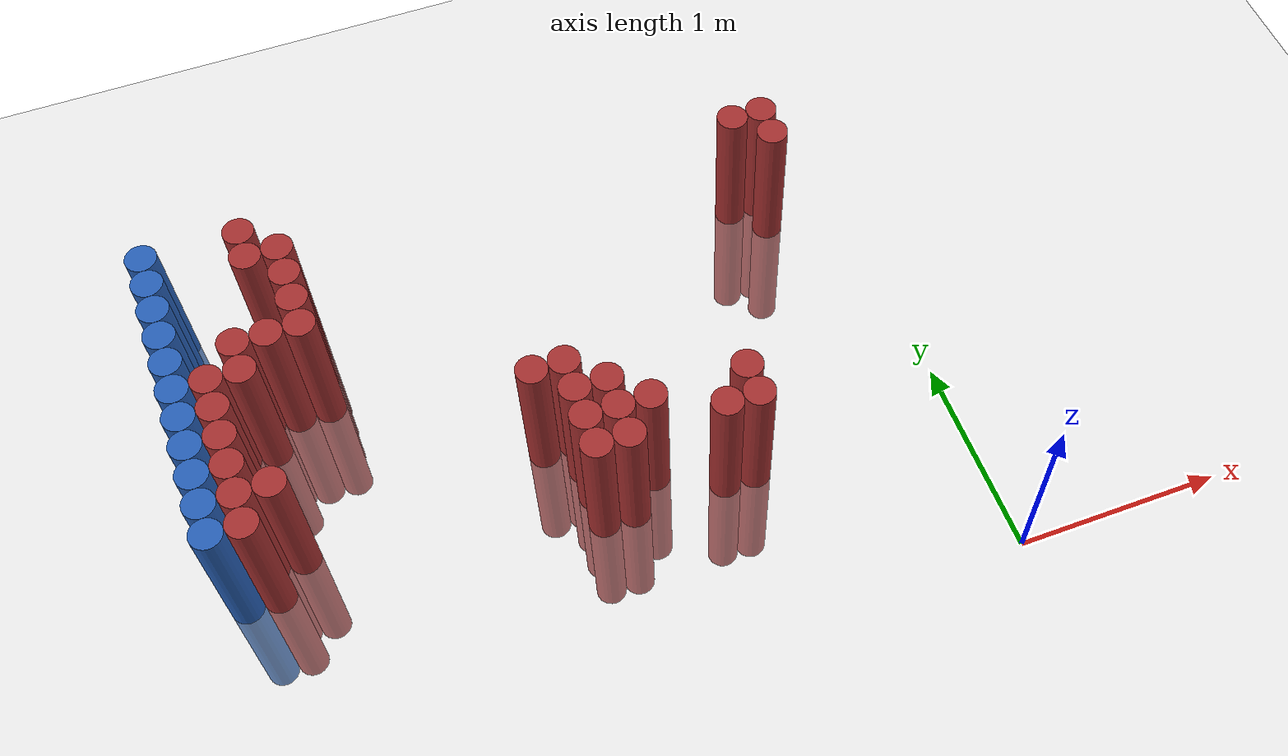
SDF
<sdf version="1.6">
 <world name="default">
  <model name="ground_plane">
   <static>1</static>
   <link name="link">
    <collision name="collision">
     <geometry><plane><normal>0 0 1</normal><size>100 100</size></plane></geometry>
     <surface><friction><ode><mu>100</mu><mu2>50</mu2></ode></friction></surface>
    </collision>
    <visual name="visual">
     <cast_shadows>0</cast_shadows>
     <geometry><plane><normal>0 0 1</normal><size>100 100</size></plane></geometry>
     <material>
      <script><uri>file://media/materials/scripts/gazebo.material</uri><name>Gazebo/Grey</name></script>
     </material>
    </visual>
   </link>
  </model>
  <model name="unit_cylinder_127">
   <static>1</static>
   <pose>-3.425000 0.925000 0.000000 0.000000 0.000000 0.000000</pose>
   <link name="link">
    <inertial>
     <mass>1</mass>
     <inertia><ixx>0.145833</ixx><ixy>0</ixy><ixz>0</ixz><iyy>0.145833</iyy><iyz>0</iyz><izz>0.125</izz></inertia>
    </inertial>
    <collision name="collision">
     <geometry><cylinder><radius>0.075000</radius><length>1.5</length></cylinder></geometry>
    </collision>
    <visual name="visual">
     <geometry><cylinder><radius>0.075000</radius><length>1.5</length></cylinder></geometry>
     <material>
      <ambient>0.152000 0.379000 0.720000 1</ambient>
      <diffuse>0.152000 0.379000 0.720000 1</diffuse>
     </material>
     <material>
      <script><name>Gazebo/Grey</name><uri>file://media/materials/scripts/gazebo.material</uri></script>
     </material>
    </visual>
   </link>
  </model>
  <model name="unit_cylinder_129">
   <static>1</static>
   <pose>-3.425000 1.075000 0.000000 0.000000 0.000000 0.000000</pose>
   <link name="link">
    <inertial>
     <mass>1</mass>
     <inertia><ixx>0.145833</ixx><ixy>0</ixy><ixz>0</ixz><iyy>0.145833</iyy><iyz>0</iyz><izz>0.125</izz></inertia>
    </inertial>
    <collision name="collision">
     <geometry><cylinder><radius>0.075000</radius><length>1.5</length></cylinder></geometry>
    </collision>
    <visual name="visual">
     <geometry><cylinder><radius>0.075000</radius><length>1.5</length></cylinder></geometry>
     <material>
      <ambient>0.152000 0.379000 0.720000 1</ambient>
      <diffuse>0.152000 0.379000 0.720000 1</diffuse>
     </material>
     <material>
      <script><name>Gazebo/Grey</name><uri>file://media/materials/scripts/gazebo.material</uri></script>
     </material>
    </visual>
   </link>
  </model>
  <model name="unit_cylinder_131">
   <static>1</static>
   <pose>-3.425000 1.225000 0.000000 0.000000 0.000000 0.000000</pose>
   <link name="link">
    <inertial>
     <mass>1</mass>
     <inertia><ixx>0.145833</ixx><ixy>0</ixy><ixz>0</ixz><iyy>0.145833</iyy><iyz>0</iyz><izz>0.125</izz></inertia>
    </inertial>
    <collision name="collision">
     <geometry><cylinder><radius>0.075000</radius><length>1.5</length></cylinder></geometry>
    </collision>
    <visual name="visual">
     <geometry><cylinder><radius>0.075000</radius><length>1.5</length></cylinder></geometry>
     <material>
      <ambient>0.152000 0.379000 0.720000 1</ambient>
      <diffuse>0.152000 0.379000 0.720000 1</diffuse>
     </material>
     <material>
      <script><name>Gazebo/Grey</name><uri>file://media/materials/scripts/gazebo.material</uri></script>
     </material>
    </visual>
   </link>
  </model>
  <model name="unit_cylinder_133">
   <static>1</static>
   <pose>-3.425000 1.375000 0.000000 0.000000 0.000000 0.000000</pose>
   <link name="link">
    <inertial>
     <mass>1</mass>
     <inertia><ixx>0.145833</ixx><ixy>0</ixy><ixz>0</ixz><iyy>0.145833</iyy><iyz>0</iyz><izz>0.125</izz></inertia>
    </inertial>
    <collision name="collision">
     <geometry><cylinder><radius>0.075000</radius><length>1.5</length></cylinder></geometry>
    </collision>
    <visual name="visual">
     <geometry><cylinder><radius>0.075000</radius><length>1.5</length></cylinder></geometry>
     <material>
      <ambient>0.152000 0.379000 0.720000 1</ambient>
      <diffuse>0.152000 0.379000 0.720000 1</diffuse>
     </material>
     <material>
      <script><name>Gazebo/Grey</name><uri>file://media/materials/scripts/gazebo.material</uri></script>
     </material>
    </visual>
   </link>
  </model>
  <model name="unit_cylinder_135">
   <static>1</static>
   <pose>-3.425000 1.525000 0.000000 0.000000 0.000000 0.000000</pose>
   <link name="link">
    <inertial>
     <mass>1</mass>
     <inertia><ixx>0.145833</ixx><ixy>0</ixy><ixz>0</ixz><iyy>0.145833</iyy><iyz>0</iyz><izz>0.125</izz></inertia>
    </inertial>
    <collision name="collision">
     <geometry><cylinder><radius>0.075000</radius><length>1.5</length></cylinder></geometry>
    </collision>
    <visual name="visual">
     <geometry><cylinder><radius>0.075000</radius><length>1.5</length></cylinder></geometry>
     <material>
      <ambient>0.152000 0.379000 0.720000 1</ambient>
      <diffuse>0.152000 0.379000 0.720000 1</diffuse>
     </material>
     <material>
      <script><name>Gazebo/Grey</name><uri>file://media/materials/scripts/gazebo.material</uri></script>
     </material>
    </visual>
   </link>
  </model>
  <model name="unit_cylinder_137">
   <static>1</static>
   <pose>-3.425000 1.675000 0.000000 0.000000 0.000000 0.000000</pose>
   <link name="link">
    <inertial>
     <mass>1</mass>
     <inertia><ixx>0.145833</ixx><ixy>0</ixy><ixz>0</ixz><iyy>0.145833</iyy><iyz>0</iyz><izz>0.125</izz></inertia>
    </inertial>
    <collision name="collision">
     <geometry><cylinder><radius>0.075000</radius><length>1.5</length></cylinder></geometry>
    </collision>
    <visual name="visual">
     <geometry><cylinder><radius>0.075000</radius><length>1.5</length></cylinder></geometry>
     <material>
      <ambient>0.152000 0.379000 0.720000 1</ambient>
      <diffuse>0.152000 0.379000 0.720000 1</diffuse>
     </material>
     <material>
      <script><name>Gazebo/Grey</name><uri>file://media/materials/scripts/gazebo.material</uri></script>
     </material>
    </visual>
   </link>
  </model>
  <model name="unit_cylinder_139">
   <static>1</static>
   <pose>-3.425000 1.825000 0.000000 0.000000 0.000000 0.000000</pose>
   <link name="link">
    <inertial>
     <mass>1</mass>
     <inertia><ixx>0.145833</ixx><ixy>0</ixy><ixz>0</ixz><iyy>0.145833</iyy><iyz>0</iyz><izz>0.125</izz></inertia>
    </inertial>
    <collision name="collision">
     <geometry><cylinder><radius>0.075000</radius><length>1.5</length></cylinder></geometry>
    </collision>
    <visual name="visual">
     <geometry><cylinder><radius>0.075000</radius><length>1.5</length></cylinder></geometry>
     <material>
      <ambient>0.152000 0.379000 0.720000 1</ambient>
      <diffuse>0.152000 0.379000 0.720000 1</diffuse>
     </material>
     <material>
      <script><name>Gazebo/Grey</name><uri>file://media/materials/scripts/gazebo.material</uri></script>
     </material>
    </visual>
   </link>
  </model>
  <model name="unit_cylinder_141">
   <static>1</static>
   <pose>-3.425000 1.975000 0.000000 0.000000 0.000000 0.000000</pose>
   <link name="link">
    <inertial>
     <mass>1</mass>
     <inertia><ixx>0.145833</ixx><ixy>0</ixy><ixz>0</ixz><iyy>0.145833</iyy><iyz>0</iyz><izz>0.125</izz></inertia>
    </inertial>
    <collision name="collision">
     <geometry><cylinder><radius>0.075000</radius><length>1.5</length></cylinder></geometry>
    </collision>
    <visual name="visual">
     <geometry><cylinder><radius>0.075000</radius><length>1.5</length></cylinder></geometry>
     <material>
      <ambient>0.152000 0.379000 0.720000 1</ambient>
      <diffuse>0.152000 0.379000 0.720000 1</diffuse>
     </material>
     <material>
      <script><name>Gazebo/Grey</name><uri>file://media/materials/scripts/gazebo.material</uri></script>
     </material>
    </visual>
   </link>
  </model>
  <model name="unit_cylinder_143">
   <static>1</static>
   <pose>-3.425000 2.125000 0.000000 0.000000 0.000000 0.000000</pose>
   <link name="link">
    <inertial>
     <mass>1</mass>
     <inertia><ixx>0.145833</ixx><ixy>0</ixy><ixz>0</ixz><iyy>0.145833</iyy><iyz>0</iyz><izz>0.125</izz></inertia>
    </inertial>
    <collision name="collision">
     <geometry><cylinder><radius>0.075000</radius><length>1.5</length></cylinder></geometry>
    </collision>
    <visual name="visual">
     <geometry><cylinder><radius>0.075000</radius><length>1.5</length></cylinder></geometry>
     <material>
      <ambient>0.152000 0.379000 0.720000 1</ambient>
      <diffuse>0.152000 0.379000 0.720000 1</diffuse>
     </material>
     <material>
      <script><name>Gazebo/Grey</name><uri>file://media/materials/scripts/gazebo.material</uri></script>
     </material>
    </visual>
   </link>
  </model>
  <model name="unit_cylinder_145">
   <static>1</static>
   <pose>-3.425000 2.275000 0.000000 0.000000 0.000000 0.000000</pose>
   <link name="link">
    <inertial>
     <mass>1</mass>
     <inertia><ixx>0.145833</ixx><ixy>0</ixy><ixz>0</ixz><iyy>0.145833</iyy><iyz>0</iyz><izz>0.125</izz></inertia>
    </inertial>
    <collision name="collision">
     <geometry><cylinder><radius>0.075000</radius><length>1.5</length></cylinder></geometry>
    </collision>
    <visual name="visual">
     <geometry><cylinder><radius>0.075000</radius><length>1.5</length></cylinder></geometry>
     <material>
      <ambient>0.152000 0.379000 0.720000 1</ambient>
      <diffuse>0.152000 0.379000 0.720000 1</diffuse>
     </material>
     <material>
      <script><name>Gazebo/Grey</name><uri>file://media/materials/scripts/gazebo.material</uri></script>
     </material>
    </visual>
   </link>
  </model>
  <model name="unit_cylinder_147">
   <static>1</static>
   <pose>-3.425000 2.425000 0.000000 0.000000 0.000000 0.000000</pose>
   <link name="link">
    <inertial>
     <mass>1</mass>
     <inertia><ixx>0.145833</ixx><ixy>0</ixy><ixz>0</ixz><iyy>0.145833</iyy><iyz>0</iyz><izz>0.125</izz></inertia>
    </inertial>
    <collision name="collision">
     <geometry><cylinder><radius>0.075000</radius><length>1.5</length></cylinder></geometry>
    </collision>
    <visual name="visual">
     <geometry><cylinder><radius>0.075000</radius><length>1.5</length></cylinder></geometry>
     <material>
      <ambient>0.152000 0.379000 0.720000 1</ambient>
      <diffuse>0.152000 0.379000 0.720000 1</diffuse>
     </material>
     <material>
      <script><name>Gazebo/Grey</name><uri>file://media/materials/scripts/gazebo.material</uri></script>
     </material>
    </visual>
   </link>
  </model>
  <model name="unit_cylinder_227">
   <static>1</static>
   <pose>-3.425000 0.925000 0.000000 0.000000 0.000000 0.000000</pose>
   <link name="link">
    <inertial>
     <mass>1</mass>
     <inertia><ixx>0.145833</ixx><ixy>0</ixy><ixz>0</ixz><iyy>0.145833</iyy><iyz>0</iyz><izz>0.125</izz></inertia>
    </inertial>
    <collision name="collision">
     <geometry><cylinder><radius>0.075000</radius><length>1.5</length></cylinder></geometry>
    </collision>
    <visual name="visual">
     <geometry><cylinder><radius>0.075000</radius><length>1.5</length></cylinder></geometry>
     <material>
      <ambient>0.152000 0.379000 0.720000 1</ambient>
      <diffuse>0.152000 0.379000 0.720000 1</diffuse>
     </material>
     <material>
      <script><name>Gazebo/Grey</name><uri>file://media/materials/scripts/gazebo.material</uri></script>
     </material>
    </visual>
   </link>
  </model>
  <model name="unit_cylinder_228">
   <static>1</static>
   <pose>-3.425000 1.075000 0.000000 0.000000 0.000000 0.000000</pose>
   <link name="link">
    <inertial>
     <mass>1</mass>
     <inertia><ixx>0.145833</ixx><ixy>0</ixy><ixz>0</ixz><iyy>0.145833</iyy><iyz>0</iyz><izz>0.125</izz></inertia>
    </inertial>
    <collision name="collision">
     <geometry><cylinder><radius>0.075000</radius><length>1.5</length></cylinder></geometry>
    </collision>
    <visual name="visual">
     <geometry><cylinder><radius>0.075000</radius><length>1.5</length></cylinder></geometry>
     <material>
      <ambient>0.152000 0.379000 0.720000 1</ambient>
      <diffuse>0.152000 0.379000 0.720000 1</diffuse>
     </material>
     <material>
      <script><name>Gazebo/Grey</name><uri>file://media/materials/scripts/gazebo.material</uri></script>
     </material>
    </visual>
   </link>
  </model>
  <model name="unit_cylinder_229">
   <static>1</static>
   <pose>-3.425000 1.225000 0.000000 0.000000 0.000000 0.000000</pose>
   <link name="link">
    <inertial>
     <mass>1</mass>
     <inertia><ixx>0.145833</ixx><ixy>0</ixy><ixz>0</ixz><iyy>0.145833</iyy><iyz>0</iyz><izz>0.125</izz></inertia>
    </inertial>
    <collision name="collision">
     <geometry><cylinder><radius>0.075000</radius><length>1.5</length></cylinder></geometry>
    </collision>
    <visual name="visual">
     <geometry><cylinder><radius>0.075000</radius><length>1.5</length></cylinder></geometry>
     <material>
      <ambient>0.152000 0.379000 0.720000 1</ambient>
      <diffuse>0.152000 0.379000 0.720000 1</diffuse>
     </material>
     <material>
      <script><name>Gazebo/Grey</name><uri>file://media/materials/scripts/gazebo.material</uri></script>
     </material>
    </visual>
   </link>
  </model>
  <model name="unit_cylinder_230">
   <static>1</static>
   <pose>-3.425000 1.375000 0.000000 0.000000 0.000000 0.000000</pose>
   <link name="link">
    <inertial>
     <mass>1</mass>
     <inertia><ixx>0.145833</ixx><ixy>0</ixy><ixz>0</ixz><iyy>0.145833</iyy><iyz>0</iyz><izz>0.125</izz></inertia>
    </inertial>
    <collision name="collision">
     <geometry><cylinder><radius>0.075000</radius><length>1.5</length></cylinder></geometry>
    </collision>
    <visual name="visual">
     <geometry><cylinder><radius>0.075000</radius><length>1.5</length></cylinder></geometry>
     <material>
      <ambient>0.152000 0.379000 0.720000 1</ambient>
      <diffuse>0.152000 0.379000 0.720000 1</diffuse>
     </material>
     <material>
      <script><name>Gazebo/Grey</name><uri>file://media/materials/scripts/gazebo.material</uri></script>
     </material>
    </visual>
   </link>
  </model>
  <model name="unit_cylinder_231">
   <static>1</static>
   <pose>-3.425000 1.525000 0.000000 0.000000 0.000000 0.000000</pose>
   <link name="link">
    <inertial>
     <mass>1</mass>
     <inertia><ixx>0.145833</ixx><ixy>0</ixy><ixz>0</ixz><iyy>0.145833</iyy><iyz>0</iyz><izz>0.125</izz></inertia>
    </inertial>
    <collision name="collision">
     <geometry><cylinder><radius>0.075000</radius><length>1.5</length></cylinder></geometry>
    </collision>
    <visual name="visual">
     <geometry><cylinder><radius>0.075000</radius><length>1.5</length></cylinder></geometry>
     <material>
      <ambient>0.152000 0.379000 0.720000 1</ambient>
      <diffuse>0.152000 0.379000 0.720000 1</diffuse>
     </material>
     <material>
      <script><name>Gazebo/Grey</name><uri>file://media/materials/scripts/gazebo.material</uri></script>
     </material>
    </visual>
   </link>
  </model>
  <model name="unit_cylinder_232">
   <static>1</static>
   <pose>-3.425000 1.675000 0.000000 0.000000 0.000000 0.000000</pose>
   <link name="link">
    <inertial>
     <mass>1</mass>
     <inertia><ixx>0.145833</ixx><ixy>0</ixy><ixz>0</ixz><iyy>0.145833</iyy><iyz>0</iyz><izz>0.125</izz></inertia>
    </inertial>
    <collision name="collision">
     <geometry><cylinder><radius>0.075000</radius><length>1.5</length></cylinder></geometry>
    </collision>
    <visual name="visual">
     <geometry><cylinder><radius>0.075000</radius><length>1.5</length></cylinder></geometry>
     <material>
      <ambient>0.152000 0.379000 0.720000 1</ambient>
      <diffuse>0.152000 0.379000 0.720000 1</diffuse>
     </material>
     <material>
      <script><name>Gazebo/Grey</name><uri>file://media/materials/scripts/gazebo.material</uri></script>
     </material>
    </visual>
   </link>
  </model>
  <model name="unit_cylinder_233">
   <static>1</static>
   <pose>-3.425000 1.825000 0.000000 0.000000 0.000000 0.000000</pose>
   <link name="link">
    <inertial>
     <mass>1</mass>
     <inertia><ixx>0.145833</ixx><ixy>0</ixy><ixz>0</ixz><iyy>0.145833</iyy><iyz>0</iyz><izz>0.125</izz></inertia>
    </inertial>
    <collision name="collision">
     <geometry><cylinder><radius>0.075000</radius><length>1.5</length></cylinder></geometry>
    </collision>
    <visual name="visual">
     <geometry><cylinder><radius>0.075000</radius><length>1.5</length></cylinder></geometry>
     <material>
      <ambient>0.152000 0.379000 0.720000 1</ambient>
      <diffuse>0.152000 0.379000 0.720000 1</diffuse>
     </material>
     <material>
      <script><name>Gazebo/Grey</name><uri>file://media/materials/scripts/gazebo.material</uri></script>
     </material>
    </visual>
   </link>
  </model>
  <model name="unit_cylinder_234">
   <static>1</static>
   <pose>-3.425000 1.975000 0.000000 0.000000 0.000000 0.000000</pose>
   <link name="link">
    <inertial>
     <mass>1</mass>
     <inertia><ixx>0.145833</ixx><ixy>0</ixy><ixz>0</ixz><iyy>0.145833</iyy><iyz>0</iyz><izz>0.125</izz></inertia>
    </inertial>
    <collision name="collision">
     <geometry><cylinder><radius>0.075000</radius><length>1.5</length></cylinder></geometry>
    </collision>
    <visual name="visual">
     <geometry><cylinder><radius>0.075000</radius><length>1.5</length></cylinder></geometry>
     <material>
      <ambient>0.152000 0.379000 0.720000 1</ambient>
      <diffuse>0.152000 0.379000 0.720000 1</diffuse>
     </material>
     <material>
      <script><name>Gazebo/Grey</name><uri>file://media/materials/scripts/gazebo.material</uri></script>
     </material>
    </visual>
   </link>
  </model>
  <model name="unit_cylinder_235">
   <static>1</static>
   <pose>-3.425000 2.125000 0.000000 0.000000 0.000000 0.000000</pose>
   <link name="link">
    <inertial>
     <mass>1</mass>
     <inertia><ixx>0.145833</ixx><ixy>0</ixy><ixz>0</ixz><iyy>0.145833</iyy><iyz>0</iyz><izz>0.125</izz></inertia>
    </inertial>
    <collision name="collision">
     <geometry><cylinder><radius>0.075000</radius><length>1.5</length></cylinder></geometry>
    </collision>
    <visual name="visual">
     <geometry><cylinder><radius>0.075000</radius><length>1.5</length></cylinder></geometry>
     <material>
      <ambient>0.152000 0.379000 0.720000 1</ambient>
      <diffuse>0.152000 0.379000 0.720000 1</diffuse>
     </material>
     <material>
      <script><name>Gazebo/Grey</name><uri>file://media/materials/scripts/gazebo.material</uri></script>
     </material>
    </visual>
   </link>
  </model>
  <model name="unit_cylinder_236">
   <static>1</static>
   <pose>-3.425000 2.275000 0.000000 0.000000 0.000000 0.000000</pose>
   <link name="link">
    <inertial>
     <mass>1</mass>
     <inertia><ixx>0.145833</ixx><ixy>0</ixy><ixz>0</ixz><iyy>0.145833</iyy><iyz>0</iyz><izz>0.125</izz></inertia>
    </inertial>
    <collision name="collision">
     <geometry><cylinder><radius>0.075000</radius><length>1.5</length></cylinder></geometry>
    </collision>
    <visual name="visual">
     <geometry><cylinder><radius>0.075000</radius><length>1.5</length></cylinder></geometry>
     <material>
      <ambient>0.152000 0.379000 0.720000 1</ambient>
      <diffuse>0.152000 0.379000 0.720000 1</diffuse>
     </material>
     <material>
      <script><name>Gazebo/Grey</name><uri>file://media/materials/scripts/gazebo.material</uri></script>
     </material>
    </visual>
   </link>
  </model>
  <model name="unit_cylinder_237">
   <static>1</static>
   <pose>-3.425000 2.425000 0.000000 0.000000 0.000000 0.000000</pose>
   <link name="link">
    <inertial>
     <mass>1</mass>
     <inertia><ixx>0.145833</ixx><ixy>0</ixy><ixz>0</ixz><iyy>0.145833</iyy><iyz>0</iyz><izz>0.125</izz></inertia>
    </inertial>
    <collision name="collision">
     <geometry><cylinder><radius>0.075000</radius><length>1.5</length></cylinder></geometry>
    </collision>
    <visual name="visual">
     <geometry><cylinder><radius>0.075000</radius><length>1.5</length></cylinder></geometry>
     <material>
      <ambient>0.152000 0.379000 0.720000 1</ambient>
      <diffuse>0.152000 0.379000 0.720000 1</diffuse>
     </material>
     <material>
      <script><name>Gazebo/Grey</name><uri>file://media/materials/scripts/gazebo.material</uri></script>
     </material>
    </visual>
   </link>
  </model>
  <model name="unit_cylinder_269">
   <static>1</static>
   <pose>-3.275000 0.925000 0.000000 0.000000 0.000000 0.000000</pose>
   <link name="link">
    <inertial>
     <mass>1</mass>
     <inertia><ixx>0.145833</ixx><ixy>0</ixy><ixz>0</ixz><iyy>0.145833</iyy><iyz>0</iyz><izz>0.125</izz></inertia>
    </inertial>
    <collision name="collision">
     <geometry><cylinder><radius>0.075000</radius><length>1.5</length></cylinder></geometry>
    </collision>
    <visual name="visual">
     <geometry><cylinder><radius>0.075000</radius><length>1.5</length></cylinder></geometry>
     <material>
      <ambient>0.648000 0.192000 0.192000 1</ambient>
      <diffuse>0.648000 0.192000 0.192000 1</diffuse>
     </material>
     <material>
      <script><name>Gazebo/Grey</name><uri>file://media/materials/scripts/gazebo.material</uri></script>
     </material>
    </visual>
   </link>
  </model>
  <model name="unit_cylinder_270">
   <static>1</static>
   <pose>-3.275000 1.075000 0.000000 0.000000 0.000000 0.000000</pose>
   <link name="link">
    <inertial>
     <mass>1</mass>
     <inertia><ixx>0.145833</ixx><ixy>0</ixy><ixz>0</ixz><iyy>0.145833</iyy><iyz>0</iyz><izz>0.125</izz></inertia>
    </inertial>
    <collision name="collision">
     <geometry><cylinder><radius>0.075000</radius><length>1.5</length></cylinder></geometry>
    </collision>
    <visual name="visual">
     <geometry><cylinder><radius>0.075000</radius><length>1.5</length></cylinder></geometry>
     <material>
      <ambient>0.648000 0.192000 0.192000 1</ambient>
      <diffuse>0.648000 0.192000 0.192000 1</diffuse>
     </material>
     <material>
      <script><name>Gazebo/Grey</name><uri>file://media/materials/scripts/gazebo.material</uri></script>
     </material>
    </visual>
   </link>
  </model>
  <model name="unit_cylinder_271">
   <static>1</static>
   <pose>-3.275000 1.225000 0.000000 0.000000 0.000000 0.000000</pose>
   <link name="link">
    <inertial>
     <mass>1</mass>
     <inertia><ixx>0.145833</ixx><ixy>0</ixy><ixz>0</ixz><iyy>0.145833</iyy><iyz>0</iyz><izz>0.125</izz></inertia>
    </inertial>
    <collision name="collision">
     <geometry><cylinder><radius>0.075000</radius><length>1.5</length></cylinder></geometry>
    </collision>
    <visual name="visual">
     <geometry><cylinder><radius>0.075000</radius><length>1.5</length></cylinder></geometry>
     <material>
      <ambient>0.648000 0.192000 0.192000 1</ambient>
      <diffuse>0.648000 0.192000 0.192000 1</diffuse>
     </material>
     <material>
      <script><name>Gazebo/Grey</name><uri>file://media/materials/scripts/gazebo.material</uri></script>
     </material>
    </visual>
   </link>
  </model>
  <model name="unit_cylinder_272">
   <static>1</static>
   <pose>-3.275000 1.375000 0.000000 0.000000 0.000000 0.000000</pose>
   <link name="link">
    <inertial>
     <mass>1</mass>
     <inertia><ixx>0.145833</ixx><ixy>0</ixy><ixz>0</ixz><iyy>0.145833</iyy><iyz>0</iyz><izz>0.125</izz></inertia>
    </inertial>
    <collision name="collision">
     <geometry><cylinder><radius>0.075000</radius><length>1.5</length></cylinder></geometry>
    </collision>
    <visual name="visual">
     <geometry><cylinder><radius>0.075000</radius><length>1.5</length></cylinder></geometry>
     <material>
      <ambient>0.648000 0.192000 0.192000 1</ambient>
      <diffuse>0.648000 0.192000 0.192000 1</diffuse>
     </material>
     <material>
      <script><name>Gazebo/Grey</name><uri>file://media/materials/scripts/gazebo.material</uri></script>
     </material>
    </visual>
   </link>
  </model>
  <model name="unit_cylinder_273">
   <static>1</static>
   <pose>-3.275000 1.525000 0.000000 0.000000 0.000000 0.000000</pose>
   <link name="link">
    <inertial>
     <mass>1</mass>
     <inertia><ixx>0.145833</ixx><ixy>0</ixy><ixz>0</ixz><iyy>0.145833</iyy><iyz>0</iyz><izz>0.125</izz></inertia>
    </inertial>
    <collision name="collision">
     <geometry><cylinder><radius>0.075000</radius><length>1.5</length></cylinder></geometry>
    </collision>
    <visual name="visual">
     <geometry><cylinder><radius>0.075000</radius><length>1.5</length></cylinder></geometry>
     <material>
      <ambient>0.648000 0.192000 0.192000 1</ambient>
      <diffuse>0.648000 0.192000 0.192000 1</diffuse>
     </material>
     <material>
      <script><name>Gazebo/Grey</name><uri>file://media/materials/scripts/gazebo.material</uri></script>
     </material>
    </visual>
   </link>
  </model>
  <model name="unit_cylinder_274">
   <static>1</static>
   <pose>-3.275000 1.675000 0.000000 0.000000 0.000000 0.000000</pose>
   <link name="link">
    <inertial>
     <mass>1</mass>
     <inertia><ixx>0.145833</ixx><ixy>0</ixy><ixz>0</ixz><iyy>0.145833</iyy><iyz>0</iyz><izz>0.125</izz></inertia>
    </inertial>
    <collision name="collision">
     <geometry><cylinder><radius>0.075000</radius><length>1.5</length></cylinder></geometry>
    </collision>
    <visual name="visual">
     <geometry><cylinder><radius>0.075000</radius><length>1.5</length></cylinder></geometry>
     <material>
      <ambient>0.648000 0.192000 0.192000 1</ambient>
      <diffuse>0.648000 0.192000 0.192000 1</diffuse>
     </material>
     <material>
      <script><name>Gazebo/Grey</name><uri>file://media/materials/scripts/gazebo.material</uri></script>
     </material>
    </visual>
   </link>
  </model>
  <model name="unit_cylinder_288">
   <static>1</static>
   <pose>-3.125000 1.075000 0.000000 0.000000 0.000000 0.000000</pose>
   <link name="link">
    <inertial>
     <mass>1</mass>
     <inertia><ixx>0.145833</ixx><ixy>0</ixy><ixz>0</ixz><iyy>0.145833</iyy><iyz>0</iyz><izz>0.125</izz></inertia>
    </inertial>
    <collision name="collision">
     <geometry><cylinder><radius>0.075000</radius><length>1.5</length></cylinder></geometry>
    </collision>
    <visual name="visual">
     <geometry><cylinder><radius>0.075000</radius><length>1.5</length></cylinder></geometry>
     <material>
      <ambient>0.648000 0.192000 0.192000 1</ambient>
      <diffuse>0.648000 0.192000 0.192000 1</diffuse>
     </material>
     <material>
      <script><name>Gazebo/Grey</name><uri>file://media/materials/scripts/gazebo.material</uri></script>
     </material>
    </visual>
   </link>
  </model>
  <model name="unit_cylinder_289">
   <static>1</static>
   <pose>-3.125000 1.675000 0.000000 0.000000 0.000000 0.000000</pose>
   <link name="link">
    <inertial>
     <mass>1</mass>
     <inertia><ixx>0.145833</ixx><ixy>0</ixy><ixz>0</ixz><iyy>0.145833</iyy><iyz>0</iyz><izz>0.125</izz></inertia>
    </inertial>
    <collision name="collision">
     <geometry><cylinder><radius>0.075000</radius><length>1.5</length></cylinder></geometry>
    </collision>
    <visual name="visual">
     <geometry><cylinder><radius>0.075000</radius><length>1.5</length></cylinder></geometry>
     <material>
      <ambient>0.648000 0.192000 0.192000 1</ambient>
      <diffuse>0.648000 0.192000 0.192000 1</diffuse>
     </material>
     <material>
      <script><name>Gazebo/Grey</name><uri>file://media/materials/scripts/gazebo.material</uri></script>
     </material>
    </visual>
   </link>
  </model>
  <model name="unit_cylinder_290">
   <static>1</static>
   <pose>-3.125000 1.825000 0.000000 0.000000 0.000000 0.000000</pose>
   <link name="link">
    <inertial>
     <mass>1</mass>
     <inertia><ixx>0.145833</ixx><ixy>0</ixy><ixz>0</ixz><iyy>0.145833</iyy><iyz>0</iyz><izz>0.125</izz></inertia>
    </inertial>
    <collision name="collision">
     <geometry><cylinder><radius>0.075000</radius><length>1.5</length></cylinder></geometry>
    </collision>
    <visual name="visual">
     <geometry><cylinder><radius>0.075000</radius><length>1.5</length></cylinder></geometry>
     <material>
      <ambient>0.648000 0.192000 0.192000 1</ambient>
      <diffuse>0.648000 0.192000 0.192000 1</diffuse>
     </material>
     <material>
      <script><name>Gazebo/Grey</name><uri>file://media/materials/scripts/gazebo.material</uri></script>
     </material>
    </visual>
   </link>
  </model>
  <model name="unit_cylinder_296">
   <static>1</static>
   <pose>-2.975000 1.825000 0.000000 0.000000 0.000000 0.000000</pose>
   <link name="link">
    <inertial>
     <mass>1</mass>
     <inertia><ixx>0.145833</ixx><ixy>0</ixy><ixz>0</ixz><iyy>0.145833</iyy><iyz>0</iyz><izz>0.125</izz></inertia>
    </inertial>
    <collision name="collision">
     <geometry><cylinder><radius>0.075000</radius><length>1.5</length></cylinder></geometry>
    </collision>
    <visual name="visual">
     <geometry><cylinder><radius>0.075000</radius><length>1.5</length></cylinder></geometry>
     <material>
      <ambient>0.648000 0.192000 0.192000 1</ambient>
      <diffuse>0.648000 0.192000 0.192000 1</diffuse>
     </material>
     <material>
      <script><name>Gazebo/Grey</name><uri>file://media/materials/scripts/gazebo.material</uri></script>
     </material>
    </visual>
   </link>
  </model>
  <model name="unit_cylinder_297">
   <static>1</static>
   <pose>-2.975000 2.275000 0.000000 0.000000 0.000000 0.000000</pose>
   <link name="link">
    <inertial>
     <mass>1</mass>
     <inertia><ixx>0.145833</ixx><ixy>0</ixy><ixz>0</ixz><iyy>0.145833</iyy><iyz>0</iyz><izz>0.125</izz></inertia>
    </inertial>
    <collision name="collision">
     <geometry><cylinder><radius>0.075000</radius><length>1.5</length></cylinder></geometry>
    </collision>
    <visual name="visual">
     <geometry><cylinder><radius>0.075000</radius><length>1.5</length></cylinder></geometry>
     <material>
      <ambient>0.648000 0.192000 0.192000 1</ambient>
      <diffuse>0.648000 0.192000 0.192000 1</diffuse>
     </material>
     <material>
      <script><name>Gazebo/Grey</name><uri>file://media/materials/scripts/gazebo.material</uri></script>
     </material>
    </visual>
   </link>
  </model>
  <model name="unit_cylinder_298">
   <static>1</static>
   <pose>-2.975000 2.425000 0.000000 0.000000 0.000000 0.000000</pose>
   <link name="link">
    <inertial>
     <mass>1</mass>
     <inertia><ixx>0.145833</ixx><ixy>0</ixy><ixz>0</ixz><iyy>0.145833</iyy><iyz>0</iyz><izz>0.125</izz></inertia>
    </inertial>
    <collision name="collision">
     <geometry><cylinder><radius>0.075000</radius><length>1.5</length></cylinder></geometry>
    </collision>
    <visual name="visual">
     <geometry><cylinder><radius>0.075000</radius><length>1.5</length></cylinder></geometry>
     <material>
      <ambient>0.648000 0.192000 0.192000 1</ambient>
      <diffuse>0.648000 0.192000 0.192000 1</diffuse>
     </material>
     <material>
      <script><name>Gazebo/Grey</name><uri>file://media/materials/scripts/gazebo.material</uri></script>
     </material>
    </visual>
   </link>
  </model>
  <model name="unit_cylinder_306">
   <static>1</static>
   <pose>-2.825000 1.825000 0.000000 0.000000 0.000000 0.000000</pose>
   <link name="link">
    <inertial>
     <mass>1</mass>
     <inertia><ixx>0.145833</ixx><ixy>0</ixy><ixz>0</ixz><iyy>0.145833</iyy><iyz>0</iyz><izz>0.125</izz></inertia>
    </inertial>
    <collision name="collision">
     <geometry><cylinder><radius>0.075000</radius><length>1.5</length></cylinder></geometry>
    </collision>
    <visual name="visual">
     <geometry><cylinder><radius>0.075000</radius><length>1.5</length></cylinder></geometry>
     <material>
      <ambient>0.648000 0.192000 0.192000 1</ambient>
      <diffuse>0.648000 0.192000 0.192000 1</diffuse>
     </material>
     <material>
      <script><name>Gazebo/Grey</name><uri>file://media/materials/scripts/gazebo.material</uri></script>
     </material>
    </visual>
   </link>
  </model>
  <model name="unit_cylinder_307">
   <static>1</static>
   <pose>-2.825000 1.975000 0.000000 0.000000 0.000000 0.000000</pose>
   <link name="link">
    <inertial>
     <mass>1</mass>
     <inertia><ixx>0.145833</ixx><ixy>0</ixy><ixz>0</ixz><iyy>0.145833</iyy><iyz>0</iyz><izz>0.125</izz></inertia>
    </inertial>
    <collision name="collision">
     <geometry><cylinder><radius>0.075000</radius><length>1.5</length></cylinder></geometry>
    </collision>
    <visual name="visual">
     <geometry><cylinder><radius>0.075000</radius><length>1.5</length></cylinder></geometry>
     <material>
      <ambient>0.648000 0.192000 0.192000 1</ambient>
      <diffuse>0.648000 0.192000 0.192000 1</diffuse>
     </material>
     <material>
      <script><name>Gazebo/Grey</name><uri>file://media/materials/scripts/gazebo.material</uri></script>
     </material>
    </visual>
   </link>
  </model>
  <model name="unit_cylinder_308">
   <static>1</static>
   <pose>-2.825000 2.125000 0.000000 0.000000 0.000000 0.000000</pose>
   <link name="link">
    <inertial>
     <mass>1</mass>
     <inertia><ixx>0.145833</ixx><ixy>0</ixy><ixz>0</ixz><iyy>0.145833</iyy><iyz>0</iyz><izz>0.125</izz></inertia>
    </inertial>
    <collision name="collision">
     <geometry><cylinder><radius>0.075000</radius><length>1.5</length></cylinder></geometry>
    </collision>
    <visual name="visual">
     <geometry><cylinder><radius>0.075000</radius><length>1.5</length></cylinder></geometry>
     <material>
      <ambient>0.648000 0.192000 0.192000 1</ambient>
      <diffuse>0.648000 0.192000 0.192000 1</diffuse>
     </material>
     <material>
      <script><name>Gazebo/Grey</name><uri>file://media/materials/scripts/gazebo.material</uri></script>
     </material>
    </visual>
   </link>
  </model>
  <model name="unit_cylinder_309">
   <static>1</static>
   <pose>-2.825000 2.275000 0.000000 0.000000 0.000000 0.000000</pose>
   <link name="link">
    <inertial>
     <mass>1</mass>
     <inertia><ixx>0.145833</ixx><ixy>0</ixy><ixz>0</ixz><iyy>0.145833</iyy><iyz>0</iyz><izz>0.125</izz></inertia>
    </inertial>
    <collision name="collision">
     <geometry><cylinder><radius>0.075000</radius><length>1.5</length></cylinder></geometry>
    </collision>
    <visual name="visual">
     <geometry><cylinder><radius>0.075000</radius><length>1.5</length></cylinder></geometry>
     <material>
      <ambient>0.648000 0.192000 0.192000 1</ambient>
      <diffuse>0.648000 0.192000 0.192000 1</diffuse>
     </material>
     <material>
      <script><name>Gazebo/Grey</name><uri>file://media/materials/scripts/gazebo.material</uri></script>
     </material>
    </visual>
   </link>
  </model>
  <model name="unit_cylinder_357">
   <static>1</static>
   <pose>-1.925000 1.225000 0.000000 0.000000 0.000000 0.000000</pose>
   <link name="link">
    <inertial>
     <mass>1</mass>
     <inertia><ixx>0.145833</ixx><ixy>0</ixy><ixz>0</ixz><iyy>0.145833</iyy><iyz>0</iyz><izz>0.125</izz></inertia>
    </inertial>
    <collision name="collision">
     <geometry><cylinder><radius>0.075000</radius><length>1.5</length></cylinder></geometry>
    </collision>
    <visual name="visual">
     <geometry><cylinder><radius>0.075000</radius><length>1.5</length></cylinder></geometry>
     <material>
      <ambient>0.648000 0.192000 0.192000 1</ambient>
      <diffuse>0.648000 0.192000 0.192000 1</diffuse>
     </material>
     <material>
      <script><name>Gazebo/Grey</name><uri>file://media/materials/scripts/gazebo.material</uri></script>
     </material>
    </visual>
   </link>
  </model>
  <model name="unit_cylinder_364">
   <static>1</static>
   <pose>-1.775000 0.775000 0.000000 0.000000 0.000000 0.000000</pose>
   <link name="link">
    <inertial>
     <mass>1</mass>
     <inertia><ixx>0.145833</ixx><ixy>0</ixy><ixz>0</ixz><iyy>0.145833</iyy><iyz>0</iyz><izz>0.125</izz></inertia>
    </inertial>
    <collision name="collision">
     <geometry><cylinder><radius>0.075000</radius><length>1.5</length></cylinder></geometry>
    </collision>
    <visual name="visual">
     <geometry><cylinder><radius>0.075000</radius><length>1.5</length></cylinder></geometry>
     <material>
      <ambient>0.648000 0.192000 0.192000 1</ambient>
      <diffuse>0.648000 0.192000 0.192000 1</diffuse>
     </material>
     <material>
      <script><name>Gazebo/Grey</name><uri>file://media/materials/scripts/gazebo.material</uri></script>
     </material>
    </visual>
   </link>
  </model>
  <model name="unit_cylinder_365">
   <static>1</static>
   <pose>-1.775000 0.925000 0.000000 0.000000 0.000000 0.000000</pose>
   <link name="link">
    <inertial>
     <mass>1</mass>
     <inertia><ixx>0.145833</ixx><ixy>0</ixy><ixz>0</ixz><iyy>0.145833</iyy><iyz>0</iyz><izz>0.125</izz></inertia>
    </inertial>
    <collision name="collision">
     <geometry><cylinder><radius>0.075000</radius><length>1.5</length></cylinder></geometry>
    </collision>
    <visual name="visual">
     <geometry><cylinder><radius>0.075000</radius><length>1.5</length></cylinder></geometry>
     <material>
      <ambient>0.648000 0.192000 0.192000 1</ambient>
      <diffuse>0.648000 0.192000 0.192000 1</diffuse>
     </material>
     <material>
      <script><name>Gazebo/Grey</name><uri>file://media/materials/scripts/gazebo.material</uri></script>
     </material>
    </visual>
   </link>
  </model>
  <model name="unit_cylinder_366">
   <static>1</static>
   <pose>-1.775000 1.075000 0.000000 0.000000 0.000000 0.000000</pose>
   <link name="link">
    <inertial>
     <mass>1</mass>
     <inertia><ixx>0.145833</ixx><ixy>0</ixy><ixz>0</ixz><iyy>0.145833</iyy><iyz>0</iyz><izz>0.125</izz></inertia>
    </inertial>
    <collision name="collision">
     <geometry><cylinder><radius>0.075000</radius><length>1.5</length></cylinder></geometry>
    </collision>
    <visual name="visual">
     <geometry><cylinder><radius>0.075000</radius><length>1.5</length></cylinder></geometry>
     <material>
      <ambient>0.648000 0.192000 0.192000 1</ambient>
      <diffuse>0.648000 0.192000 0.192000 1</diffuse>
     </material>
     <material>
      <script><name>Gazebo/Grey</name><uri>file://media/materials/scripts/gazebo.material</uri></script>
     </material>
    </visual>
   </link>
  </model>
  <model name="unit_cylinder_367">
   <static>1</static>
   <pose>-1.775000 1.225000 0.000000 0.000000 0.000000 0.000000</pose>
   <link name="link">
    <inertial>
     <mass>1</mass>
     <inertia><ixx>0.145833</ixx><ixy>0</ixy><ixz>0</ixz><iyy>0.145833</iyy><iyz>0</iyz><izz>0.125</izz></inertia>
    </inertial>
    <collision name="collision">
     <geometry><cylinder><radius>0.075000</radius><length>1.5</length></cylinder></geometry>
    </collision>
    <visual name="visual">
     <geometry><cylinder><radius>0.075000</radius><length>1.5</length></cylinder></geometry>
     <material>
      <ambient>0.648000 0.192000 0.192000 1</ambient>
      <diffuse>0.648000 0.192000 0.192000 1</diffuse>
     </material>
     <material>
      <script><name>Gazebo/Grey</name><uri>file://media/materials/scripts/gazebo.material</uri></script>
     </material>
    </visual>
   </link>
  </model>
  <model name="unit_cylinder_375">
   <static>1</static>
   <pose>-1.625000 0.775000 0.000000 0.000000 0.000000 0.000000</pose>
   <link name="link">
    <inertial>
     <mass>1</mass>
     <inertia><ixx>0.145833</ixx><ixy>0</ixy><ixz>0</ixz><iyy>0.145833</iyy><iyz>0</iyz><izz>0.125</izz></inertia>
    </inertial>
    <collision name="collision">
     <geometry><cylinder><radius>0.075000</radius><length>1.5</length></cylinder></geometry>
    </collision>
    <visual name="visual">
     <geometry><cylinder><radius>0.075000</radius><length>1.5</length></cylinder></geometry>
     <material>
      <ambient>0.648000 0.192000 0.192000 1</ambient>
      <diffuse>0.648000 0.192000 0.192000 1</diffuse>
     </material>
     <material>
      <script><name>Gazebo/Grey</name><uri>file://media/materials/scripts/gazebo.material</uri></script>
     </material>
    </visual>
   </link>
  </model>
  <model name="unit_cylinder_376">
   <static>1</static>
   <pose>-1.625000 0.925000 0.000000 0.000000 0.000000 0.000000</pose>
   <link name="link">
    <inertial>
     <mass>1</mass>
     <inertia><ixx>0.145833</ixx><ixy>0</ixy><ixz>0</ixz><iyy>0.145833</iyy><iyz>0</iyz><izz>0.125</izz></inertia>
    </inertial>
    <collision name="collision">
     <geometry><cylinder><radius>0.075000</radius><length>1.5</length></cylinder></geometry>
    </collision>
    <visual name="visual">
     <geometry><cylinder><radius>0.075000</radius><length>1.5</length></cylinder></geometry>
     <material>
      <ambient>0.648000 0.192000 0.192000 1</ambient>
      <diffuse>0.648000 0.192000 0.192000 1</diffuse>
     </material>
     <material>
      <script><name>Gazebo/Grey</name><uri>file://media/materials/scripts/gazebo.material</uri></script>
     </material>
    </visual>
   </link>
  </model>
  <model name="unit_cylinder_377">
   <static>1</static>
   <pose>-1.625000 1.075000 0.000000 0.000000 0.000000 0.000000</pose>
   <link name="link">
    <inertial>
     <mass>1</mass>
     <inertia><ixx>0.145833</ixx><ixy>0</ixy><ixz>0</ixz><iyy>0.145833</iyy><iyz>0</iyz><izz>0.125</izz></inertia>
    </inertial>
    <collision name="collision">
     <geometry><cylinder><radius>0.075000</radius><length>1.5</length></cylinder></geometry>
    </collision>
    <visual name="visual">
     <geometry><cylinder><radius>0.075000</radius><length>1.5</length></cylinder></geometry>
     <material>
      <ambient>0.648000 0.192000 0.192000 1</ambient>
      <diffuse>0.648000 0.192000 0.192000 1</diffuse>
     </material>
     <material>
      <script><name>Gazebo/Grey</name><uri>file://media/materials/scripts/gazebo.material</uri></script>
     </material>
    </visual>
   </link>
  </model>
  <model name="unit_cylinder_382">
   <static>1</static>
   <pose>-1.475000 0.925000 0.000000 0.000000 0.000000 0.000000</pose>
   <link name="link">
    <inertial>
     <mass>1</mass>
     <inertia><ixx>0.145833</ixx><ixy>0</ixy><ixz>0</ixz><iyy>0.145833</iyy><iyz>0</iyz><izz>0.125</izz></inertia>
    </inertial>
    <collision name="collision">
     <geometry><cylinder><radius>0.075000</radius><length>1.5</length></cylinder></geometry>
    </collision>
    <visual name="visual">
     <geometry><cylinder><radius>0.075000</radius><length>1.5</length></cylinder></geometry>
     <material>
      <ambient>0.648000 0.192000 0.192000 1</ambient>
      <diffuse>0.648000 0.192000 0.192000 1</diffuse>
     </material>
     <material>
      <script><name>Gazebo/Grey</name><uri>file://media/materials/scripts/gazebo.material</uri></script>
     </material>
    </visual>
   </link>
  </model>
  <model name="unit_cylinder_385">
   <static>1</static>
   <pose>-1.175000 0.775000 0.000000 0.000000 0.000000 0.000000</pose>
   <link name="link">
    <inertial>
     <mass>1</mass>
     <inertia><ixx>0.145833</ixx><ixy>0</ixy><ixz>0</ixz><iyy>0.145833</iyy><iyz>0</iyz><izz>0.125</izz></inertia>
    </inertial>
    <collision name="collision">
     <geometry><cylinder><radius>0.075000</radius><length>1.5</length></cylinder></geometry>
    </collision>
    <visual name="visual">
     <geometry><cylinder><radius>0.075000</radius><length>1.5</length></cylinder></geometry>
     <material>
      <ambient>0.648000 0.192000 0.192000 1</ambient>
      <diffuse>0.648000 0.192000 0.192000 1</diffuse>
     </material>
     <material>
      <script><name>Gazebo/Grey</name><uri>file://media/materials/scripts/gazebo.material</uri></script>
     </material>
    </visual>
   </link>
  </model>
  <model name="unit_cylinder_391">
   <static>1</static>
   <pose>-1.025000 0.775000 0.000000 0.000000 0.000000 0.000000</pose>
   <link name="link">
    <inertial>
     <mass>1</mass>
     <inertia><ixx>0.145833</ixx><ixy>0</ixy><ixz>0</ixz><iyy>0.145833</iyy><iyz>0</iyz><izz>0.125</izz></inertia>
    </inertial>
    <collision name="collision">
     <geometry><cylinder><radius>0.075000</radius><length>1.5</length></cylinder></geometry>
    </collision>
    <visual name="visual">
     <geometry><cylinder><radius>0.075000</radius><length>1.5</length></cylinder></geometry>
     <material>
      <ambient>0.648000 0.192000 0.192000 1</ambient>
      <diffuse>0.648000 0.192000 0.192000 1</diffuse>
     </material>
     <material>
      <script><name>Gazebo/Grey</name><uri>file://media/materials/scripts/gazebo.material</uri></script>
     </material>
    </visual>
   </link>
  </model>
  <model name="unit_cylinder_392">
   <static>1</static>
   <pose>-1.025000 0.925000 0.000000 0.000000 0.000000 0.000000</pose>
   <link name="link">
    <inertial>
     <mass>1</mass>
     <inertia><ixx>0.145833</ixx><ixy>0</ixy><ixz>0</ixz><iyy>0.145833</iyy><iyz>0</iyz><izz>0.125</izz></inertia>
    </inertial>
    <collision name="collision">
     <geometry><cylinder><radius>0.075000</radius><length>1.5</length></cylinder></geometry>
    </collision>
    <visual name="visual">
     <geometry><cylinder><radius>0.075000</radius><length>1.5</length></cylinder></geometry>
     <material>
      <ambient>0.648000 0.192000 0.192000 1</ambient>
      <diffuse>0.648000 0.192000 0.192000 1</diffuse>
     </material>
     <material>
      <script><name>Gazebo/Grey</name><uri>file://media/materials/scripts/gazebo.material</uri></script>
     </material>
    </visual>
   </link>
  </model>
  <model name="unit_cylinder_404">
   <static>1</static>
   <pose>-0.575000 2.275000 0.000000 0.000000 0.000000 0.000000</pose>
   <link name="link">
    <inertial>
     <mass>1</mass>
     <inertia><ixx>0.145833</ixx><ixy>0</ixy><ixz>0</ixz><iyy>0.145833</iyy><iyz>0</iyz><izz>0.125</izz></inertia>
    </inertial>
    <collision name="collision">
     <geometry><cylinder><radius>0.075000</radius><length>1.5</length></cylinder></geometry>
    </collision>
    <visual name="visual">
     <geometry><cylinder><radius>0.075000</radius><length>1.5</length></cylinder></geometry>
     <material>
      <ambient>0.648000 0.192000 0.192000 1</ambient>
      <diffuse>0.648000 0.192000 0.192000 1</diffuse>
     </material>
     <material>
      <script><name>Gazebo/Grey</name><uri>file://media/materials/scripts/gazebo.material</uri></script>
     </material>
    </visual>
   </link>
  </model>
  <model name="unit_cylinder_407">
   <static>1</static>
   <pose>-0.425000 2.125000 0.000000 0.000000 0.000000 0.000000</pose>
   <link name="link">
    <inertial>
     <mass>1</mass>
     <inertia><ixx>0.145833</ixx><ixy>0</ixy><ixz>0</ixz><iyy>0.145833</iyy><iyz>0</iyz><izz>0.125</izz></inertia>
    </inertial>
    <collision name="collision">
     <geometry><cylinder><radius>0.075000</radius><length>1.5</length></cylinder></geometry>
    </collision>
    <visual name="visual">
     <geometry><cylinder><radius>0.075000</radius><length>1.5</length></cylinder></geometry>
     <material>
      <ambient>0.648000 0.192000 0.192000 1</ambient>
      <diffuse>0.648000 0.192000 0.192000 1</diffuse>
     </material>
     <material>
      <script><name>Gazebo/Grey</name><uri>file://media/materials/scripts/gazebo.material</uri></script>
     </material>
    </visual>
   </link>
  </model>
  <model name="unit_cylinder_408">
   <static>1</static>
   <pose>-0.425000 2.275000 0.000000 0.000000 0.000000 0.000000</pose>
   <link name="link">
    <inertial>
     <mass>1</mass>
     <inertia><ixx>0.145833</ixx><ixy>0</ixy><ixz>0</ixz><iyy>0.145833</iyy><iyz>0</iyz><izz>0.125</izz></inertia>
    </inertial>
    <collision name="collision">
     <geometry><cylinder><radius>0.075000</radius><length>1.5</length></cylinder></geometry>
    </collision>
    <visual name="visual">
     <geometry><cylinder><radius>0.075000</radius><length>1.5</length></cylinder></geometry>
     <material>
      <ambient>0.648000 0.192000 0.192000 1</ambient>
      <diffuse>0.648000 0.192000 0.192000 1</diffuse>
     </material>
     <material>
      <script><name>Gazebo/Grey</name><uri>file://media/materials/scripts/gazebo.material</uri></script>
     </material>
    </visual>
   </link>
  </model>
 </world>
</sdf>
